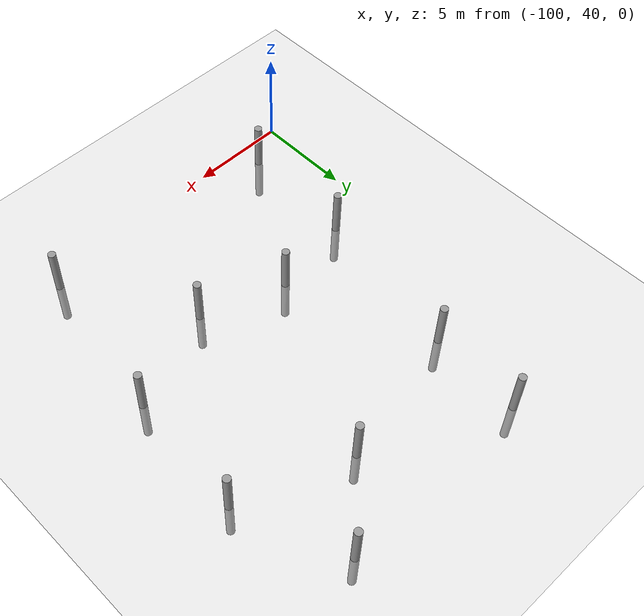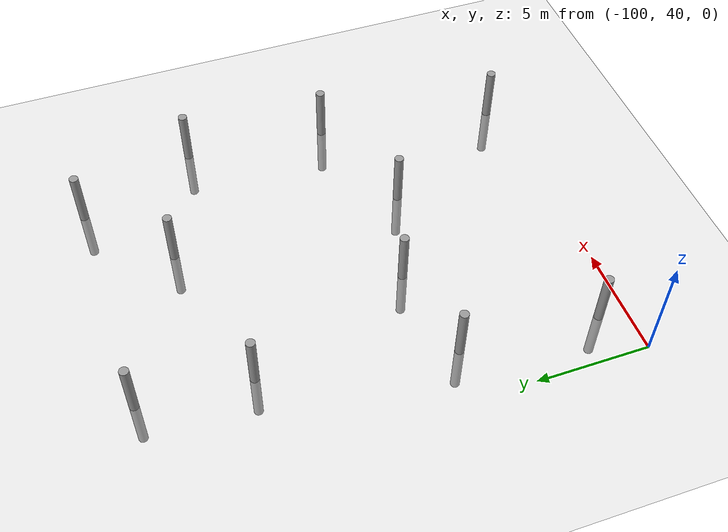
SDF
<sdf version="1.6">
 <world name="default">
  <model name="ground_plane">
   <static>1</static>
   <link name="link">
    <collision name="collision">
     <geometry><plane><normal>0 0 1</normal><size>100 100</size></plane></geometry>
     <surface><friction><ode><mu>100</mu><mu2>50</mu2></ode></friction></surface>
    </collision>
    <visual name="visual">
     <cast_shadows>0</cast_shadows>
     <geometry><plane><normal>0 0 1</normal><size>100 100</size></plane></geometry>
     <material>
      <script><uri>file://media/materials/scripts/gazebo.material</uri><name>Gazebo/Grey</name></script>
     </material>
    </visual>
   </link>
  </model>
  <model name="empty_pillars">
   <model name="empty_pillar_clone_35">
    <link name="link">
     <inertial>
      <mass>1</mass>
      <inertia><ixx>0.145833</ixx><ixy>0</ixy><ixz>0</ixz><iyy>0.145833</iyy><iyz>0</iyz><izz>0.125</izz></inertia>
     </inertial>
     <visual name="visual">
      <geometry><cylinder><radius>0.2</radius><length>5</length></cylinder></geometry>
      <material>
       <script><name>Gazebo/Grey</name><uri>file://media/materials/scripts/gazebo.material</uri></script>
       <shader type="vertex"><normal_map>__default__</normal_map></shader>
       <ambient>0.3 0.3 0.3 1</ambient>
       <diffuse>0.7 0.7 0.7 1</diffuse>
       <specular>0.01 0.01 0.01 1</specular>
       <emissive>0 0 0 1</emissive>
      </material>
     </visual>
     <collision name="collision">
      <geometry><cylinder><radius>0.05</radius><length>5</length></cylinder></geometry>
      <surface>
       <friction>
        <ode><mu>1</mu><mu2>1</mu2><fdir1>0 0 0</fdir1><slip1>0</slip1><slip2>0</slip2></ode>
        <torsional>
         <coefficient>1</coefficient>
         <patch_radius>0</patch_radius>
         <surface_radius>0</surface_radius>
         <use_patch_radius>1</use_patch_radius>
         <ode><slip>0</slip></ode>
        </torsional>
       </friction>
       <bounce><restitution_coefficient>0</restitution_coefficient><threshold>1e+06</threshold></bounce>
       <contact>
        <collide_without_contact>0</collide_without_contact>
        <collide_without_contact_bitmask>1</collide_without_contact_bitmask>
        <collide_bitmask>1</collide_bitmask>
        <ode>
         <soft_cfm>0</soft_cfm>
         <soft_erp>0.2</soft_erp>
         <kp>1e+13</kp>
         <kd>1</kd>
         <max_vel>0.01</max_vel>
         <min_depth>0</min_depth>
        </ode>
        <bullet>
         <split_impulse>1</split_impulse>
         <split_impulse_penetration_threshold>-0.01</split_impulse_penetration_threshold>
         <soft_cfm>0</soft_cfm>
         <soft_erp>0.2</soft_erp>
         <kp>1e+13</kp>
         <kd>1</kd>
        </bullet>
       </contact>
      </surface>
     </collision>
    </link>
    <static>0</static>
    <pose>-19.4431 -17.0281 0 0 -0 0</pose>
   </model>
   <model name="empty_pillar_clone_42">
    <link name="link">
     <inertial>
      <mass>1</mass>
      <inertia><ixx>0.145833</ixx><ixy>0</ixy><ixz>0</ixz><iyy>0.145833</iyy><iyz>0</iyz><izz>0.125</izz></inertia>
     </inertial>
     <visual name="visual">
      <geometry><cylinder><radius>0.2</radius><length>5</length></cylinder></geometry>
      <material>
       <script><name>Gazebo/Grey</name><uri>file://media/materials/scripts/gazebo.material</uri></script>
       <shader type="vertex"><normal_map>__default__</normal_map></shader>
       <ambient>0.3 0.3 0.3 1</ambient>
       <diffuse>0.7 0.7 0.7 1</diffuse>
       <specular>0.01 0.01 0.01 1</specular>
       <emissive>0 0 0 1</emissive>
      </material>
     </visual>
     <collision name="collision">
      <geometry><cylinder><radius>0.05</radius><length>5</length></cylinder></geometry>
      <surface>
       <friction>
        <ode><mu>1</mu><mu2>1</mu2><fdir1>0 0 0</fdir1><slip1>0</slip1><slip2>0</slip2></ode>
        <torsional>
         <coefficient>1</coefficient>
         <patch_radius>0</patch_radius>
         <surface_radius>0</surface_radius>
         <use_patch_radius>1</use_patch_radius>
         <ode><slip>0</slip></ode>
        </torsional>
       </friction>
       <bounce><restitution_coefficient>0</restitution_coefficient><threshold>1e+06</threshold></bounce>
       <contact>
        <collide_without_contact>0</collide_without_contact>
        <collide_without_contact_bitmask>1</collide_without_contact_bitmask>
        <collide_bitmask>1</collide_bitmask>
        <ode>
         <soft_cfm>0</soft_cfm>
         <soft_erp>0.2</soft_erp>
         <kp>1e+13</kp>
         <kd>1</kd>
         <max_vel>0.01</max_vel>
         <min_depth>0</min_depth>
        </ode>
        <bullet>
         <split_impulse>1</split_impulse>
         <split_impulse_penetration_threshold>-0.01</split_impulse_penetration_threshold>
         <soft_cfm>0</soft_cfm>
         <soft_erp>0.2</soft_erp>
         <kp>1e+13</kp>
         <kd>1</kd>
        </bullet>
       </contact>
      </surface>
     </collision>
    </link>
    <static>0</static>
    <pose>-12.5409 -20.2416 0 0 -0 0</pose>
   </model>
   <model name="empty_pillar_clone_43">
    <link name="link">
     <inertial>
      <mass>1</mass>
      <inertia><ixx>0.145833</ixx><ixy>0</ixy><ixz>0</ixz><iyy>0.145833</iyy><iyz>0</iyz><izz>0.125</izz></inertia>
     </inertial>
     <visual name="visual">
      <geometry><cylinder><radius>0.2</radius><length>5</length></cylinder></geometry>
      <material>
       <script><name>Gazebo/Grey</name><uri>file://media/materials/scripts/gazebo.material</uri></script>
       <shader type="vertex"><normal_map>__default__</normal_map></shader>
       <ambient>0.3 0.3 0.3 1</ambient>
       <diffuse>0.7 0.7 0.7 1</diffuse>
       <specular>0.01 0.01 0.01 1</specular>
       <emissive>0 0 0 1</emissive>
      </material>
     </visual>
     <collision name="collision">
      <geometry><cylinder><radius>0.05</radius><length>5</length></cylinder></geometry>
      <surface>
       <friction>
        <ode><mu>1</mu><mu2>1</mu2><fdir1>0 0 0</fdir1><slip1>0</slip1><slip2>0</slip2></ode>
        <torsional>
         <coefficient>1</coefficient>
         <patch_radius>0</patch_radius>
         <surface_radius>0</surface_radius>
         <use_patch_radius>1</use_patch_radius>
         <ode><slip>0</slip></ode>
        </torsional>
       </friction>
       <bounce><restitution_coefficient>0</restitution_coefficient><threshold>1e+06</threshold></bounce>
       <contact>
        <collide_without_contact>0</collide_without_contact>
        <collide_without_contact_bitmask>1</collide_without_contact_bitmask>
        <collide_bitmask>1</collide_bitmask>
        <ode>
         <soft_cfm>0</soft_cfm>
         <soft_erp>0.2</soft_erp>
         <kp>1e+13</kp>
         <kd>1</kd>
         <max_vel>0.01</max_vel>
         <min_depth>0</min_depth>
        </ode>
        <bullet>
         <split_impulse>1</split_impulse>
         <split_impulse_penetration_threshold>-0.01</split_impulse_penetration_threshold>
         <soft_cfm>0</soft_cfm>
         <soft_erp>0.2</soft_erp>
         <kp>1e+13</kp>
         <kd>1</kd>
        </bullet>
       </contact>
      </surface>
     </collision>
    </link>
    <static>0</static>
    <pose>-19.7613 -21.8307 0 0 -0 0</pose>
   </model>
   <model name="empty_pillar_clone_44">
    <link name="link">
     <inertial>
      <mass>1</mass>
      <inertia><ixx>0.145833</ixx><ixy>0</ixy><ixz>0</ixz><iyy>0.145833</iyy><iyz>0</iyz><izz>0.125</izz></inertia>
     </inertial>
     <visual name="visual">
      <geometry><cylinder><radius>0.2</radius><length>5</length></cylinder></geometry>
      <material>
       <script><name>Gazebo/Grey</name><uri>file://media/materials/scripts/gazebo.material</uri></script>
       <shader type="vertex"><normal_map>__default__</normal_map></shader>
       <ambient>0.3 0.3 0.3 1</ambient>
       <diffuse>0.7 0.7 0.7 1</diffuse>
       <specular>0.01 0.01 0.01 1</specular>
       <emissive>0 0 0 1</emissive>
      </material>
     </visual>
     <collision name="collision">
      <geometry><cylinder><radius>0.05</radius><length>5</length></cylinder></geometry>
      <surface>
       <friction>
        <ode><mu>1</mu><mu2>1</mu2><fdir1>0 0 0</fdir1><slip1>0</slip1><slip2>0</slip2></ode>
        <torsional>
         <coefficient>1</coefficient>
         <patch_radius>0</patch_radius>
         <surface_radius>0</surface_radius>
         <use_patch_radius>1</use_patch_radius>
         <ode><slip>0</slip></ode>
        </torsional>
       </friction>
       <bounce><restitution_coefficient>0</restitution_coefficient><threshold>1e+06</threshold></bounce>
       <contact>
        <collide_without_contact>0</collide_without_contact>
        <collide_without_contact_bitmask>1</collide_without_contact_bitmask>
        <collide_bitmask>1</collide_bitmask>
        <ode>
         <soft_cfm>0</soft_cfm>
         <soft_erp>0.2</soft_erp>
         <kp>1e+13</kp>
         <kd>1</kd>
         <max_vel>0.01</max_vel>
         <min_depth>0</min_depth>
        </ode>
        <bullet>
         <split_impulse>1</split_impulse>
         <split_impulse_penetration_threshold>-0.01</split_impulse_penetration_threshold>
         <soft_cfm>0</soft_cfm>
         <soft_erp>0.2</soft_erp>
         <kp>1e+13</kp>
         <kd>1</kd>
        </bullet>
       </contact>
      </surface>
     </collision>
    </link>
    <static>0</static>
    <pose>-6.78285 -22.2729 0 0 -0 0</pose>
   </model>
   <model name="empty_pillar_clone_45">
    <link name="link">
     <inertial>
      <mass>1</mass>
      <inertia><ixx>0.145833</ixx><ixy>0</ixy><ixz>0</ixz><iyy>0.145833</iyy><iyz>0</iyz><izz>0.125</izz></inertia>
     </inertial>
     <visual name="visual">
      <geometry><cylinder><radius>0.2</radius><length>5</length></cylinder></geometry>
      <material>
       <script><name>Gazebo/Grey</name><uri>file://media/materials/scripts/gazebo.material</uri></script>
       <shader type="vertex"><normal_map>__default__</normal_map></shader>
       <ambient>0.3 0.3 0.3 1</ambient>
       <diffuse>0.7 0.7 0.7 1</diffuse>
       <specular>0.01 0.01 0.01 1</specular>
       <emissive>0 0 0 1</emissive>
      </material>
     </visual>
     <collision name="collision">
      <geometry><cylinder><radius>0.05</radius><length>5</length></cylinder></geometry>
      <surface>
       <friction>
        <ode><mu>1</mu><mu2>1</mu2><fdir1>0 0 0</fdir1><slip1>0</slip1><slip2>0</slip2></ode>
        <torsional>
         <coefficient>1</coefficient>
         <patch_radius>0</patch_radius>
         <surface_radius>0</surface_radius>
         <use_patch_radius>1</use_patch_radius>
         <ode><slip>0</slip></ode>
        </torsional>
       </friction>
       <bounce><restitution_coefficient>0</restitution_coefficient><threshold>1e+06</threshold></bounce>
       <contact>
        <collide_without_contact>0</collide_without_contact>
        <collide_without_contact_bitmask>1</collide_without_contact_bitmask>
        <collide_bitmask>1</collide_bitmask>
        <ode>
         <soft_cfm>0</soft_cfm>
         <soft_erp>0.2</soft_erp>
         <kp>1e+13</kp>
         <kd>1</kd>
         <max_vel>0.01</max_vel>
         <min_depth>0</min_depth>
        </ode>
        <bullet>
         <split_impulse>1</split_impulse>
         <split_impulse_penetration_threshold>-0.01</split_impulse_penetration_threshold>
         <soft_cfm>0</soft_cfm>
         <soft_erp>0.2</soft_erp>
         <kp>1e+13</kp>
         <kd>1</kd>
        </bullet>
       </contact>
      </surface>
     </collision>
    </link>
    <static>0</static>
    <pose>-9.01076 -16.9307 0 0 -0 0</pose>
   </model>
   <static>0</static>
   <pose>-76.4247 77.3975 0 0 -0 0</pose>
  </model>
  <model name="empty_pillars_6">
   <model name="empty_pillar_clone_16">
    <link name="link">
     <inertial>
      <mass>1</mass>
      <inertia><ixx>0.145833</ixx><ixy>0</ixy><ixz>0</ixz><iyy>0.145833</iyy><iyz>0</iyz><izz>0.125</izz></inertia>
     </inertial>
     <visual name="visual">
      <geometry><cylinder><radius>0.2</radius><length>5</length></cylinder></geometry>
      <material>
       <script><name>Gazebo/Grey</name><uri>file://media/materials/scripts/gazebo.material</uri></script>
       <shader type="vertex"><normal_map>__default__</normal_map></shader>
       <ambient>0.3 0.3 0.3 1</ambient>
       <diffuse>0.7 0.7 0.7 1</diffuse>
       <specular>0.01 0.01 0.01 1</specular>
       <emissive>0 0 0 1</emissive>
      </material>
     </visual>
     <collision name="collision">
      <geometry><cylinder><radius>0.05</radius><length>5</length></cylinder></geometry>
      <surface>
       <friction>
        <ode><mu>1</mu><mu2>1</mu2><fdir1>0 0 0</fdir1><slip1>0</slip1><slip2>0</slip2></ode>
        <torsional>
         <coefficient>1</coefficient>
         <patch_radius>0</patch_radius>
         <surface_radius>0</surface_radius>
         <use_patch_radius>1</use_patch_radius>
         <ode><slip>0</slip></ode>
        </torsional>
       </friction>
       <bounce><restitution_coefficient>0</restitution_coefficient><threshold>1e+06</threshold></bounce>
       <contact>
        <collide_without_contact>0</collide_without_contact>
        <collide_without_contact_bitmask>1</collide_without_contact_bitmask>
        <collide_bitmask>1</collide_bitmask>
        <ode>
         <soft_cfm>0</soft_cfm>
         <soft_erp>0.2</soft_erp>
         <kp>1e+13</kp>
         <kd>1</kd>
         <max_vel>0.01</max_vel>
         <min_depth>0</min_depth>
        </ode>
        <bullet>
         <split_impulse>1</split_impulse>
         <split_impulse_penetration_threshold>-0.01</split_impulse_penetration_threshold>
         <soft_cfm>0</soft_cfm>
         <soft_erp>0.2</soft_erp>
         <kp>1e+13</kp>
         <kd>1</kd>
        </bullet>
       </contact>
      </surface>
     </collision>
    </link>
    <static>0</static>
    <pose>-9.20789 13.0504 0 0 -0 0</pose>
   </model>
   <model name="empty_pillar_clone_20">
    <link name="link">
     <inertial>
      <mass>1</mass>
      <inertia><ixx>0.145833</ixx><ixy>0</ixy><ixz>0</ixz><iyy>0.145833</iyy><iyz>0</iyz><izz>0.125</izz></inertia>
     </inertial>
     <visual name="visual">
      <geometry><cylinder><radius>0.2</radius><length>5</length></cylinder></geometry>
      <material>
       <script><name>Gazebo/Grey</name><uri>file://media/materials/scripts/gazebo.material</uri></script>
       <shader type="vertex"><normal_map>__default__</normal_map></shader>
       <ambient>0.3 0.3 0.3 1</ambient>
       <diffuse>0.7 0.7 0.7 1</diffuse>
       <specular>0.01 0.01 0.01 1</specular>
       <emissive>0 0 0 1</emissive>
      </material>
     </visual>
     <collision name="collision">
      <geometry><cylinder><radius>0.05</radius><length>5</length></cylinder></geometry>
      <surface>
       <friction>
        <ode><mu>1</mu><mu2>1</mu2><fdir1>0 0 0</fdir1><slip1>0</slip1><slip2>0</slip2></ode>
        <torsional>
         <coefficient>1</coefficient>
         <patch_radius>0</patch_radius>
         <surface_radius>0</surface_radius>
         <use_patch_radius>1</use_patch_radius>
         <ode><slip>0</slip></ode>
        </torsional>
       </friction>
       <bounce><restitution_coefficient>0</restitution_coefficient><threshold>1e+06</threshold></bounce>
       <contact>
        <collide_without_contact>0</collide_without_contact>
        <collide_without_contact_bitmask>1</collide_without_contact_bitmask>
        <collide_bitmask>1</collide_bitmask>
        <ode>
         <soft_cfm>0</soft_cfm>
         <soft_erp>0.2</soft_erp>
         <kp>1e+13</kp>
         <kd>1</kd>
         <max_vel>0.01</max_vel>
         <min_depth>0</min_depth>
        </ode>
        <bullet>
         <split_impulse>1</split_impulse>
         <split_impulse_penetration_threshold>-0.01</split_impulse_penetration_threshold>
         <soft_cfm>0</soft_cfm>
         <soft_erp>0.2</soft_erp>
         <kp>1e+13</kp>
         <kd>1</kd>
        </bullet>
       </contact>
      </surface>
     </collision>
    </link>
    <static>0</static>
    <pose>-13.0146 19.1597 0 0 -0 0</pose>
   </model>
   <model name="empty_pillar_clone_21">
    <link name="link">
     <inertial>
      <mass>1</mass>
      <inertia><ixx>0.145833</ixx><ixy>0</ixy><ixz>0</ixz><iyy>0.145833</iyy><iyz>0</iyz><izz>0.125</izz></inertia>
     </inertial>
     <visual name="visual">
      <geometry><cylinder><radius>0.2</radius><length>5</length></cylinder></geometry>
      <material>
       <script><name>Gazebo/Grey</name><uri>file://media/materials/scripts/gazebo.material</uri></script>
       <shader type="vertex"><normal_map>__default__</normal_map></shader>
       <ambient>0.3 0.3 0.3 1</ambient>
       <diffuse>0.7 0.7 0.7 1</diffuse>
       <specular>0.01 0.01 0.01 1</specular>
       <emissive>0 0 0 1</emissive>
      </material>
     </visual>
     <collision name="collision">
      <geometry><cylinder><radius>0.05</radius><length>5</length></cylinder></geometry>
      <surface>
       <friction>
        <ode><mu>1</mu><mu2>1</mu2><fdir1>0 0 0</fdir1><slip1>0</slip1><slip2>0</slip2></ode>
        <torsional>
         <coefficient>1</coefficient>
         <patch_radius>0</patch_radius>
         <surface_radius>0</surface_radius>
         <use_patch_radius>1</use_patch_radius>
         <ode><slip>0</slip></ode>
        </torsional>
       </friction>
       <bounce><restitution_coefficient>0</restitution_coefficient><threshold>1e+06</threshold></bounce>
       <contact>
        <collide_without_contact>0</collide_without_contact>
        <collide_without_contact_bitmask>1</collide_without_contact_bitmask>
        <collide_bitmask>1</collide_bitmask>
        <ode>
         <soft_cfm>0</soft_cfm>
         <soft_erp>0.2</soft_erp>
         <kp>1e+13</kp>
         <kd>1</kd>
         <max_vel>0.01</max_vel>
         <min_depth>0</min_depth>
        </ode>
        <bullet>
         <split_impulse>1</split_impulse>
         <split_impulse_penetration_threshold>-0.01</split_impulse_penetration_threshold>
         <soft_cfm>0</soft_cfm>
         <soft_erp>0.2</soft_erp>
         <kp>1e+13</kp>
         <kd>1</kd>
        </bullet>
       </contact>
      </surface>
     </collision>
    </link>
    <static>0</static>
    <pose>-21.7273 19.7662 0 0 -0 0</pose>
   </model>
   <model name="empty_pillar_clone_22">
    <link name="link">
     <inertial>
      <mass>1</mass>
      <inertia><ixx>0.145833</ixx><ixy>0</ixy><ixz>0</ixz><iyy>0.145833</iyy><iyz>0</iyz><izz>0.125</izz></inertia>
     </inertial>
     <visual name="visual">
      <geometry><cylinder><radius>0.2</radius><length>5</length></cylinder></geometry>
      <material>
       <script><name>Gazebo/Grey</name><uri>file://media/materials/scripts/gazebo.material</uri></script>
       <shader type="vertex"><normal_map>__default__</normal_map></shader>
       <ambient>0.3 0.3 0.3 1</ambient>
       <diffuse>0.7 0.7 0.7 1</diffuse>
       <specular>0.01 0.01 0.01 1</specular>
       <emissive>0 0 0 1</emissive>
      </material>
     </visual>
     <collision name="collision">
      <geometry><cylinder><radius>0.05</radius><length>5</length></cylinder></geometry>
      <surface>
       <friction>
        <ode><mu>1</mu><mu2>1</mu2><fdir1>0 0 0</fdir1><slip1>0</slip1><slip2>0</slip2></ode>
        <torsional>
         <coefficient>1</coefficient>
         <patch_radius>0</patch_radius>
         <surface_radius>0</surface_radius>
         <use_patch_radius>1</use_patch_radius>
         <ode><slip>0</slip></ode>
        </torsional>
       </friction>
       <bounce><restitution_coefficient>0</restitution_coefficient><threshold>1e+06</threshold></bounce>
       <contact>
        <collide_without_contact>0</collide_without_contact>
        <collide_without_contact_bitmask>1</collide_without_contact_bitmask>
        <collide_bitmask>1</collide_bitmask>
        <ode>
         <soft_cfm>0</soft_cfm>
         <soft_erp>0.2</soft_erp>
         <kp>1e+13</kp>
         <kd>1</kd>
         <max_vel>0.01</max_vel>
         <min_depth>0</min_depth>
        </ode>
        <bullet>
         <split_impulse>1</split_impulse>
         <split_impulse_penetration_threshold>-0.01</split_impulse_penetration_threshold>
         <soft_cfm>0</soft_cfm>
         <soft_erp>0.2</soft_erp>
         <kp>1e+13</kp>
         <kd>1</kd>
        </bullet>
       </contact>
      </surface>
     </collision>
    </link>
    <static>0</static>
    <pose>-17.3667 20.5782 0 0 -0 0</pose>
   </model>
   <model name="empty_pillar_clone_25">
    <link name="link">
     <inertial>
      <mass>1</mass>
      <inertia><ixx>0.145833</ixx><ixy>0</ixy><ixz>0</ixz><iyy>0.145833</iyy><iyz>0</iyz><izz>0.125</izz></inertia>
     </inertial>
     <visual name="visual">
      <geometry><cylinder><radius>0.2</radius><length>5</length></cylinder></geometry>
      <material>
       <script><name>Gazebo/Grey</name><uri>file://media/materials/scripts/gazebo.material</uri></script>
       <shader type="vertex"><normal_map>__default__</normal_map></shader>
       <ambient>0.3 0.3 0.3 1</ambient>
       <diffuse>0.7 0.7 0.7 1</diffuse>
       <specular>0.01 0.01 0.01 1</specular>
       <emissive>0 0 0 1</emissive>
      </material>
     </visual>
     <collision name="collision">
      <geometry><cylinder><radius>0.05</radius><length>5</length></cylinder></geometry>
      <surface>
       <friction>
        <ode><mu>1</mu><mu2>1</mu2><fdir1>0 0 0</fdir1><slip1>0</slip1><slip2>0</slip2></ode>
        <torsional>
         <coefficient>1</coefficient>
         <patch_radius>0</patch_radius>
         <surface_radius>0</surface_radius>
         <use_patch_radius>1</use_patch_radius>
         <ode><slip>0</slip></ode>
        </torsional>
       </friction>
       <bounce><restitution_coefficient>0</restitution_coefficient><threshold>1e+06</threshold></bounce>
       <contact>
        <collide_without_contact>0</collide_without_contact>
        <collide_without_contact_bitmask>1</collide_without_contact_bitmask>
        <collide_bitmask>1</collide_bitmask>
        <ode>
         <soft_cfm>0</soft_cfm>
         <soft_erp>0.2</soft_erp>
         <kp>1e+13</kp>
         <kd>1</kd>
         <max_vel>0.01</max_vel>
         <min_depth>0</min_depth>
        </ode>
        <bullet>
         <split_impulse>1</split_impulse>
         <split_impulse_penetration_threshold>-0.01</split_impulse_penetration_threshold>
         <soft_cfm>0</soft_cfm>
         <soft_erp>0.2</soft_erp>
         <kp>1e+13</kp>
         <kd>1</kd>
        </bullet>
       </contact>
      </surface>
     </collision>
    </link>
    <static>0</static>
    <pose>-7.86239 21.1314 0 0 -0 0</pose>
   </model>
   <model name="empty_pillar_clone_50">
    <link name="link">
     <inertial>
      <mass>1</mass>
      <inertia><ixx>0.145833</ixx><ixy>0</ixy><ixz>0</ixz><iyy>0.145833</iyy><iyz>0</iyz><izz>0.125</izz></inertia>
     </inertial>
     <visual name="visual">
      <geometry><cylinder><radius>0.2</radius><length>5</length></cylinder></geometry>
      <material>
       <script><name>Gazebo/Grey</name><uri>file://media/materials/scripts/gazebo.material</uri></script>
       <shader type="vertex"><normal_map>__default__</normal_map></shader>
       <ambient>0.3 0.3 0.3 1</ambient>
       <diffuse>0.7 0.7 0.7 1</diffuse>
       <specular>0.01 0.01 0.01 1</specular>
       <emissive>0 0 0 1</emissive>
      </material>
     </visual>
     <collision name="collision">
      <geometry><cylinder><radius>0.05</radius><length>5</length></cylinder></geometry>
      <surface>
       <friction>
        <ode><mu>1</mu><mu2>1</mu2><fdir1>0 0 0</fdir1><slip1>0</slip1><slip2>0</slip2></ode>
        <torsional>
         <coefficient>1</coefficient>
         <patch_radius>0</patch_radius>
         <surface_radius>0</surface_radius>
         <use_patch_radius>1</use_patch_radius>
         <ode><slip>0</slip></ode>
        </torsional>
       </friction>
       <bounce><restitution_coefficient>0</restitution_coefficient><threshold>1e+06</threshold></bounce>
       <contact>
        <collide_without_contact>0</collide_without_contact>
        <collide_without_contact_bitmask>1</collide_without_contact_bitmask>
        <collide_bitmask>1</collide_bitmask>
        <ode>
         <soft_cfm>0</soft_cfm>
         <soft_erp>0.2</soft_erp>
         <kp>1e+13</kp>
         <kd>1</kd>
         <max_vel>0.01</max_vel>
         <min_depth>0</min_depth>
        </ode>
        <bullet>
         <split_impulse>1</split_impulse>
         <split_impulse_penetration_threshold>-0.01</split_impulse_penetration_threshold>
         <soft_cfm>0</soft_cfm>
         <soft_erp>0.2</soft_erp>
         <kp>1e+13</kp>
         <kd>1</kd>
        </bullet>
       </contact>
      </surface>
     </collision>
    </link>
    <static>0</static>
    <pose>-22.0498 13.6251 0 0 -0 0</pose>
   </model>
   <static>0</static>
   <pose>-75.8833 27.5686 0 0 -0 0</pose>
  </model>
 </world>
</sdf>
